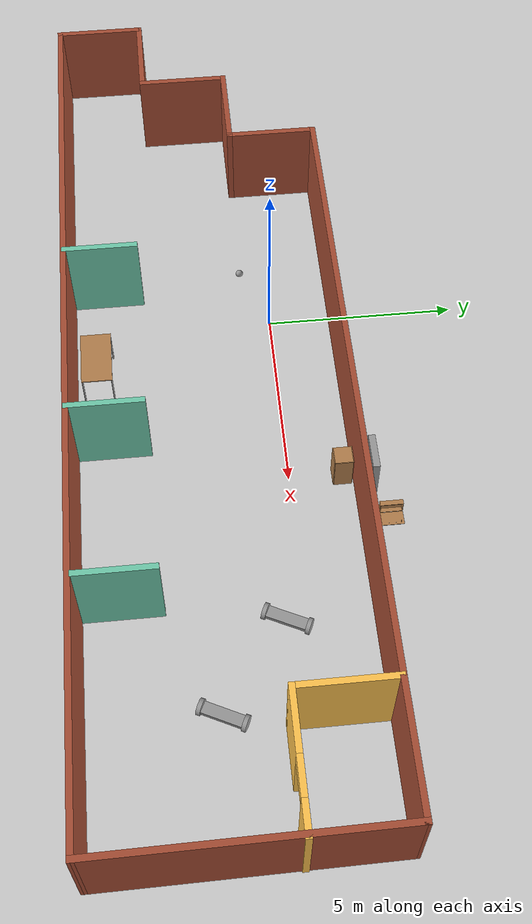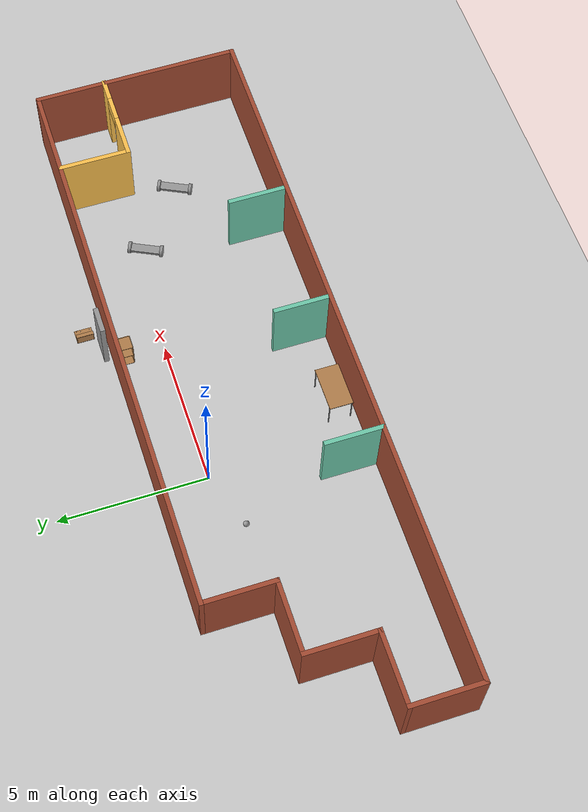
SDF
<sdf version="1.6">
 <world name="default">
  <plugin name="welcome" filename="libwelcome.so"/>
  <light name="sun" type="directional">
   <pose>0 0 10 0 -0 0</pose>
   <diffuse>0.8 0.8 0.8 1</diffuse>
   <specular>0.2 0.2 0.2 1</specular>
   <attenuation>
    <range>1000</range>
    <constant>0.9</constant>
    <linear>0.01</linear>
    <quadratic>0.001</quadratic>
   </attenuation>
   <direction>-0.5 0.1 -0.9</direction>
  </light>
  <model name="ground_plane">
   <static>1</static>
   <link name="link">
    <collision name="collision">
     <geometry><plane><normal>0 0 1</normal><size>100 100</size></plane></geometry>
     <surface>
      <contact><collide_bitmask>65535</collide_bitmask></contact>
      <friction><ode><mu>100</mu><mu2>50</mu2></ode></friction>
     </surface>
    </collision>
    <visual name="visual">
     <cast_shadows>0</cast_shadows>
     <geometry><plane><normal>0 0 1</normal><size>100 100</size></plane></geometry>
     <material>
      <script><uri>file://media/materials/scripts/gazebo.material</uri><name>Gazebo/Grey</name></script>
     </material>
    </visual>
   </link>
  </model>
  <gravity>0 0 -9.8</gravity>
  <magnetic_field>6e-06 2.3e-05 -4.2e-05</magnetic_field>
  <atmosphere type="adiabatic"/>
  <physics name="default_physics" default="0" type="ode">
   <max_step_size>0.001</max_step_size>
   <real_time_factor>1</real_time_factor>
   <real_time_update_rate>1000</real_time_update_rate>
  </physics>
  <scene><ambient>0.4 0.4 0.4 1</ambient><background>0.7 0.7 0.7 1</background><shadows>1</shadows></scene>
  <spherical_coordinates>
   <surface_model>EARTH_WGS84</surface_model>
   <latitude_deg>0</latitude_deg>
   <longitude_deg>0</longitude_deg>
   <elevation>0</elevation>
   <heading_deg>0</heading_deg>
  </spherical_coordinates>
  <model name="building1">
   <pose>2.49047 -1.82906 0 0 -0 0</pose>
   <link name="Door_0">
    <collision name="Door_0_Collision">
     <geometry><box><size>0.9 0.17 2</size></box></geometry>
     <pose>0 0 1 0 -0 0</pose>
    </collision>
    <visual name="Door_0_Visual">
     <pose>0 0 1 0 -0 0</pose>
     <geometry><box><size>0.9 0.17 2</size></box></geometry>
     <material>
      <script><uri>file://media/materials/scripts/gazebo.material</uri><name>Gazebo/Grey</name></script>
     </material>
    </visual>
    <pose>3.08272 3.79251 0 0 -0 0</pose>
   </link>
   <link name="Wall_0">
    <collision name="Wall_0_Collision">
     <geometry><box><size>19.5 0.15 2.5</size></box></geometry>
     <pose>0 0 1.25 0 -0 0</pose>
    </collision>
    <visual name="Wall_0_Visual">
     <pose>0 0 1.25 0 -0 0</pose>
     <geometry><box><size>19.5 0.15 2.5</size></box></geometry>
     <material>
      <script><uri>file://media/materials/scripts/gazebo.material</uri><name>Gazebo/Bricks</name></script>
      <ambient>1 1 1 1</ambient>
     </material>
     <meta><layer>0</layer></meta>
    </visual>
    <pose>2.32473 3.525 0 0 -0 0</pose>
   </link>
   <link name="Wall_10">
    <collision name="Wall_10_Collision">
     <geometry><box><size>24.25 0.15 2.5</size></box></geometry>
     <pose>0 0 1.25 0 -0 0</pose>
    </collision>
    <visual name="Wall_10_Visual">
     <pose>0 0 1.25 0 -0 0</pose>
     <geometry><box><size>24.25 0.15 2.5</size></box></geometry>
     <material>
      <script><uri>file://media/materials/scripts/gazebo.material</uri><name>Gazebo/Bricks</name></script>
      <ambient>1 1 1 1</ambient>
     </material>
     <meta><layer>0</layer></meta>
    </visual>
    <pose>-0.000265 -3.525 0 0 -0 0</pose>
   </link>
   <link name="Wall_11">
    <collision name="Wall_11_Collision">
     <geometry><box><size>7.20018 0.15 2.5</size></box></geometry>
     <pose>0 0 1.25 0 -0 0</pose>
    </collision>
    <visual name="Wall_11_Visual">
     <pose>0 0 1.25 0 -0 0</pose>
     <geometry><box><size>7.20018 0.15 2.5</size></box></geometry>
     <material>
      <script><uri>file://media/materials/scripts/gazebo.material</uri><name>Gazebo/Bricks</name></script>
      <ambient>1 1 1 1</ambient>
     </material>
     <meta><layer>0</layer></meta>
    </visual>
    <pose>12.0247 0 0 0 -0 1.57789</pose>
   </link>
   <link name="Wall_13">
    <collision name="Wall_13_Collision">
     <geometry><box><size>2.5 0.15 2.5</size></box></geometry>
     <pose>0 0 1.25 0 -0 0</pose>
    </collision>
    <visual name="Wall_13_Visual">
     <pose>0 0 1.25 0 -0 0</pose>
     <geometry><box><size>2.5 0.15 2.5</size></box></geometry>
     <material>
      <script><uri>file://media/materials/scripts/gazebo.material</uri><name>Gazebo/Grey</name></script>
      <ambient>1 0.764706 0.305882 1</ambient>
     </material>
     <meta><layer>0</layer></meta>
    </visual>
    <pose>8.9466 2.32405 0 0 -0 -1.5708</pose>
   </link>
   <link name="Wall_14">
    <pose>10.4966 1.14905 0 0 -0 0</pose>
    <visual name="Wall_14_Visual_0">
     <pose>-0.859299 0 1.25 0 -0 0</pose>
     <geometry><box><size>1.5314 0.15 2.5</size></box></geometry>
     <material>
      <script><uri>file://media/materials/scripts/gazebo.material</uri><name>Gazebo/Grey</name></script>
      <ambient>1 0.764706 0.305882 1</ambient>
     </material>
     <meta><layer>0</layer></meta>
    </visual>
    <collision name="Wall_14_Collision_0">
     <geometry><box><size>1.5314 0.15 2.5</size></box></geometry>
     <pose>-0.859299 0 1.25 0 -0 0</pose>
    </collision>
    <visual name="Wall_14_Visual_1">
     <pose>1.2157 0 1.25 0 -0 0</pose>
     <geometry><box><size>0.818598 0.15 2.5</size></box></geometry>
     <material>
      <script><uri>file://media/materials/scripts/gazebo.material</uri><name>Gazebo/Grey</name></script>
      <ambient>1 0.764706 0.305882 1</ambient>
     </material>
     <meta><layer>0</layer></meta>
    </visual>
    <collision name="Wall_14_Collision_1">
     <geometry><box><size>0.818598 0.15 2.5</size></box></geometry>
     <pose>1.2157 0 1.25 0 -0 0</pose>
    </collision>
    <visual name="Wall_14_Visual_2">
     <pose>0.356402 0 2.25 0 -0 0</pose>
     <geometry><box><size>0.9 0.15 0.5</size></box></geometry>
     <material>
      <script><uri>file://media/materials/scripts/gazebo.material</uri><name>Gazebo/Grey</name></script>
      <ambient>1 0.764706 0.305882 1</ambient>
     </material>
     <meta><layer>0</layer></meta>
    </visual>
    <collision name="Wall_14_Collision_2">
     <geometry><box><size>0.9 0.15 0.5</size></box></geometry>
     <pose>0.356402 0 2.25 0 -0 0</pose>
    </collision>
   </link>
   <link name="Wall_16">
    <collision name="Wall_16_Collision">
     <geometry><box><size>2 0.15 2.5</size></box></geometry>
     <pose>0 0 1.25 0 -0 0</pose>
    </collision>
    <visual name="Wall_16_Visual">
     <pose>0 0 1.25 0 -0 0</pose>
     <geometry><box><size>2 0.15 2.5</size></box></geometry>
     <material>
      <script><uri>file://media/materials/scripts/gazebo.material</uri><name>Gazebo/Grey</name></script>
      <ambient>0.435294 0.796078 0.67451 1</ambient>
     </material>
     <meta><layer>0</layer></meta>
    </visual>
    <pose>-3.555 -2.57166 0 0 -0 1.5708</pose>
   </link>
   <link name="Wall_18">
    <collision name="Wall_18_Collision">
     <geometry><box><size>2 0.15 2.5</size></box></geometry>
     <pose>0 0 1.25 0 -0 0</pose>
    </collision>
    <visual name="Wall_18_Visual">
     <pose>0 0 1.25 0 -0 0</pose>
     <geometry><box><size>2 0.15 2.5</size></box></geometry>
     <material>
      <script><uri>file://media/materials/scripts/gazebo.material</uri><name>Gazebo/Grey</name></script>
      <ambient>0.435294 0.796078 0.67451 1</ambient>
     </material>
     <meta><layer>0</layer></meta>
    </visual>
    <pose>1.40062 -2.58152 0 0 -0 1.5708</pose>
   </link>
   <link name="Wall_2">
    <collision name="Wall_2_Collision">
     <geometry><box><size>2.5 0.15 2.5</size></box></geometry>
     <pose>0 0 1.25 0 -0 0</pose>
    </collision>
    <visual name="Wall_2_Visual">
     <pose>0 0 1.25 0 -0 0</pose>
     <geometry><box><size>2.5 0.15 2.5</size></box></geometry>
     <material>
      <script><uri>file://media/materials/scripts/gazebo.material</uri><name>Gazebo/Bricks</name></script>
      <ambient>1 1 1 1</ambient>
     </material>
     <meta><layer>0</layer></meta>
    </visual>
    <pose>-7.35027 2.35 0 0 -0 -1.5708</pose>
   </link>
   <link name="Wall_21">
    <collision name="Wall_21_Collision">
     <geometry><box><size>2 0.15 2.5</size></box></geometry>
     <pose>0 0 1.25 0 -0 0</pose>
    </collision>
    <visual name="Wall_21_Visual">
     <pose>0 0 1.25 0 -0 0</pose>
     <geometry><box><size>2 0.15 2.5</size></box></geometry>
     <material>
      <script><uri>file://media/materials/scripts/gazebo.material</uri><name>Gazebo/Grey</name></script>
      <ambient>0.435294 0.796078 0.67451 1</ambient>
     </material>
     <meta><layer>0</layer></meta>
    </visual>
    <pose>5.89738 -2.47989 0 0 -0 1.5708</pose>
   </link>
   <link name="Wall_3">
    <collision name="Wall_3_Collision">
     <geometry><box><size>2.5 0.15 2.5</size></box></geometry>
     <pose>0 0 1.25 0 -0 0</pose>
    </collision>
    <visual name="Wall_3_Visual">
     <pose>0 0 1.25 0 -0 0</pose>
     <geometry><box><size>2.5 0.15 2.5</size></box></geometry>
     <material>
      <script><uri>file://media/materials/scripts/gazebo.material</uri><name>Gazebo/Bricks</name></script>
      <ambient>1 1 1 1</ambient>
     </material>
     <meta><layer>0</layer></meta>
    </visual>
    <pose>-8.52526 1.175 0 0 -0 3.14159</pose>
   </link>
   <link name="Wall_5">
    <collision name="Wall_5_Collision">
     <geometry><box><size>2.5 0.15 2.5</size></box></geometry>
     <pose>0 0 1.25 0 -0 0</pose>
    </collision>
    <visual name="Wall_5_Visual">
     <pose>0 0 1.25 0 -0 0</pose>
     <geometry><box><size>2.5 0.15 2.5</size></box></geometry>
     <material>
      <script><uri>file://media/materials/scripts/gazebo.material</uri><name>Gazebo/Bricks</name></script>
      <ambient>1 1 1 1</ambient>
     </material>
     <meta><layer>0</layer></meta>
    </visual>
    <pose>-9.70027 0 0 0 -0 -1.5708</pose>
   </link>
   <link name="Wall_7">
    <collision name="Wall_7_Collision">
     <geometry><box><size>2.5 0.15 2.5</size></box></geometry>
     <pose>0 0 1.25 0 -0 0</pose>
    </collision>
    <visual name="Wall_7_Visual">
     <pose>0 0 1.25 0 -0 0</pose>
     <geometry><box><size>2.5 0.15 2.5</size></box></geometry>
     <material>
      <script><uri>file://media/materials/scripts/gazebo.material</uri><name>Gazebo/Bricks</name></script>
      <ambient>1 1 1 1</ambient>
     </material>
     <meta><layer>0</layer></meta>
    </visual>
    <pose>-10.8753 -1.175 0 0 -0 3.14159</pose>
   </link>
   <link name="Wall_8">
    <collision name="Wall_8_Collision">
     <geometry><box><size>2.5 0.15 2.5</size></box></geometry>
     <pose>0 0 1.25 0 -0 0</pose>
    </collision>
    <visual name="Wall_8_Visual">
     <pose>0 0 1.25 0 -0 0</pose>
     <geometry><box><size>2.5 0.15 2.5</size></box></geometry>
     <material>
      <script><uri>file://media/materials/scripts/gazebo.material</uri><name>Gazebo/Bricks</name></script>
      <ambient>1 1 1 1</ambient>
     </material>
     <meta><layer>0</layer></meta>
    </visual>
    <pose>-12.0503 -2.35 0 0 -0 -1.5708</pose>
   </link>
   <static>1</static>
  </model>
  <model name="table">
   <static>1</static>
   <link name="link">
    <collision name="surface">
     <pose>0 0 1 0 -0 0</pose>
     <geometry><box><size>1.5 0.8 0.03</size></box></geometry>
     <surface><friction><ode><mu>0.6</mu><mu2>0.6</mu2></ode></friction></surface>
    </collision>
    <visual name="visual1">
     <pose>0 0 1 0 -0 0</pose>
     <geometry><box><size>1.5 0.8 0.03</size></box></geometry>
     <material>
      <script><uri>file://media/materials/scripts/gazebo.material</uri><name>Gazebo/Wood</name></script>
     </material>
    </visual>
    <collision name="front_left_leg">
     <pose>0.68 0.38 0.5 0 -0 0</pose>
     <geometry><cylinder><radius>0.02</radius><length>1</length></cylinder></geometry>
    </collision>
    <visual name="front_left_leg">
     <pose>0.68 0.38 0.5 0 -0 0</pose>
     <geometry><cylinder><radius>0.02</radius><length>1</length></cylinder></geometry>
     <material>
      <script><uri>file://media/materials/scripts/gazebo.material</uri><name>Gazebo/Grey</name></script>
     </material>
    </visual>
    <collision name="front_right_leg">
     <pose>0.68 -0.38 0.5 0 -0 0</pose>
     <geometry><cylinder><radius>0.02</radius><length>1</length></cylinder></geometry>
    </collision>
    <visual name="front_right_leg">
     <pose>0.68 -0.38 0.5 0 -0 0</pose>
     <geometry><cylinder><radius>0.02</radius><length>1</length></cylinder></geometry>
     <material>
      <script><uri>file://media/materials/scripts/gazebo.material</uri><name>Gazebo/Grey</name></script>
     </material>
    </visual>
    <collision name="back_right_leg">
     <pose>-0.68 -0.38 0.5 0 -0 0</pose>
     <geometry><cylinder><radius>0.02</radius><length>1</length></cylinder></geometry>
    </collision>
    <visual name="back_right_leg">
     <pose>-0.68 -0.38 0.5 0 -0 0</pose>
     <geometry><cylinder><radius>0.02</radius><length>1</length></cylinder></geometry>
     <material>
      <script><uri>file://media/materials/scripts/gazebo.material</uri><name>Gazebo/Grey</name></script>
     </material>
    </visual>
    <collision name="back_left_leg">
     <pose>-0.68 0.38 0.5 0 -0 0</pose>
     <geometry><cylinder><radius>0.02</radius><length>1</length></cylinder></geometry>
    </collision>
    <visual name="back_left_leg">
     <pose>-0.68 0.38 0.5 0 -0 0</pose>
     <geometry><cylinder><radius>0.02</radius><length>1</length></cylinder></geometry>
     <material>
      <script><uri>file://media/materials/scripts/gazebo.material</uri><name>Gazebo/Grey</name></script>
     </material>
    </visual>
   </link>
   <pose>1.44674 -4.69605 0 0 -0 0</pose>
  </model>
  <model name="cabinet">
   <static>1</static>
   <link name="cabinet_bottom_plate">
    <inertial>
     <pose>0 0 -1 0 -0 0</pose>
     <inertia><ixx>2.05</ixx><ixy>0</ixy><ixz>0</ixz><iyy>2.05</iyy><iyz>0</iyz><izz>2.05</izz></inertia>
     <mass>25</mass>
    </inertial>
    <collision name="cabinet_bottom_plate_geom">
     <pose>0 0 0.01 0 -0 0</pose>
     <geometry><box><size>0.45 0.45 0.02</size></box></geometry>
    </collision>
    <visual name="cabinet_bottom_plate_geom_visual">
     <pose>0 0 0.01 0 -0 0</pose>
     <geometry><box><size>0.45 0.45 0.02</size></box></geometry>
     <material>
      <script><uri>file://media/materials/scripts/gazebo.material</uri><name>Gazebo/Wood</name></script>
     </material>
    </visual>
    <collision name="cabinet_bottom_plate_geom_cabinet_back_plate">
     <pose>0.235 0 0.51 0 -0 0</pose>
     <geometry><box><size>0.02 0.45 1.02</size></box></geometry>
    </collision>
    <visual name="cabinet_bottom_plate_geom_cabinet_back_plate_visual">
     <pose>0.235 0 0.51 0 -0 0</pose>
     <geometry><box><size>0.02 0.45 1.02</size></box></geometry>
     <material>
      <script><uri>file://media/materials/scripts/gazebo.material</uri><name>Gazebo/Wood</name></script>
     </material>
    </visual>
    <collision name="cabinet_bottom_plate_geom_cabinet_left_plate">
     <pose>0 0.235 0.51 0 -0 0</pose>
     <geometry><box><size>0.45 0.02 1.02</size></box></geometry>
    </collision>
    <visual name="cabinet_bottom_plate_geom_cabinet_left_plate_visual">
     <pose>0 0.235 0.51 0 -0 0</pose>
     <geometry><box><size>0.45 0.02 1.02</size></box></geometry>
     <material>
      <script><uri>file://media/materials/scripts/gazebo.material</uri><name>Gazebo/Wood</name></script>
     </material>
    </visual>
    <collision name="cabinet_bottom_plate_geom_cabinet_middle_plate">
     <pose>0 0 0.51 0 -0 0</pose>
     <geometry><box><size>0.45 0.45 0.02</size></box></geometry>
    </collision>
    <visual name="cabinet_bottom_plate_geom_cabinet_middle_plate_visual">
     <pose>0 0 0.51 0 -0 0</pose>
     <geometry><box><size>0.45 0.45 0.02</size></box></geometry>
     <material>
      <script><uri>file://media/materials/scripts/gazebo.material</uri><name>Gazebo/Wood</name></script>
     </material>
    </visual>
    <collision name="cabinet_bottom_plate_geom_cabinet_right_plate">
     <pose>0 -0.235 0.51 0 -0 0</pose>
     <geometry><box><size>0.45 0.02 1.02</size></box></geometry>
    </collision>
    <visual name="cabinet_bottom_plate_geom_cabinet_right_plate_visual">
     <pose>0 -0.235 0.51 0 -0 0</pose>
     <geometry><box><size>0.45 0.02 1.02</size></box></geometry>
     <material>
      <script><uri>file://media/materials/scripts/gazebo.material</uri><name>Gazebo/Wood</name></script>
     </material>
    </visual>
    <collision name="cabinet_bottom_plate_geom_cabinet_top_plate">
     <pose>0 0 1.01 0 -0 0</pose>
     <geometry><box><size>0.45 0.45 0.02</size></box></geometry>
    </collision>
    <visual name="cabinet_bottom_plate_geom_cabinet_top_plate_visual">
     <pose>0 0 1.01 0 -0 0</pose>
     <geometry><box><size>0.45 0.45 0.02</size></box></geometry>
     <material>
      <script><uri>file://media/materials/scripts/gazebo.material</uri><name>Gazebo/Wood</name></script>
     </material>
    </visual>
   </link>
   <pose>5.02531 1.33672 0 0 -0 0</pose>
  </model>
  <model name="wooden_case_wooden_peg">
   <link name="wooden_case::base">
    <pose>0 0 0.024 0 -0 0</pose>
    <inertial>
     <pose>-0.022184 0 0.171592 0 -0 0</pose>
     <mass>3.96264</mass>
     <inertia>
      <ixx>0.213536</ixx>
      <ixy>0</ixy>
      <ixz>0.000779377</ixz>
      <iyy>0.0708943</iyy>
      <iyz>0</iyz>
      <izz>0.154604</izz>
     </inertia>
    </inertial>
    <collision name="collision_back">
     <pose>-0.053975 0 0.1778 0 -0 0</pose>
     <geometry><box><size>0.01905 0.5461 0.3175</size></box></geometry>
     <surface>
      <contact>
       <poissons_ratio>0.347</poissons_ratio>
       <elastic_modulus>8.8e+09</elastic_modulus>
       <ode><kp>100000</kp><kd>100</kd><max_vel>100</max_vel><min_depth>0.001</min_depth></ode>
      </contact>
      <friction>
       <torsional>
        <coefficient>1</coefficient>
        <use_patch_radius>0</use_patch_radius>
        <surface_radius>0.01</surface_radius>
       </torsional>
      </friction>
     </surface>
    </collision>
    <visual name="visual_back">
     <pose>-0.053975 0 0.1778 0 -0 0</pose>
     <geometry><box><size>0.01905 0.5461 0.3175</size></box></geometry>
     <material>
      <script><uri>file://media/materials/scripts/gazebo.material</uri><name>Gazebo/Wood</name></script>
     </material>
    </visual>
    <collision name="collision_bottom">
     <pose>0 0 0.009525 0 -0 0</pose>
     <geometry><box><size>0.127 0.5842 0.01905</size></box></geometry>
     <surface>
      <contact>
       <poissons_ratio>0.347</poissons_ratio>
       <elastic_modulus>8.8e+09</elastic_modulus>
       <ode><kp>100000</kp><kd>100</kd><max_vel>100</max_vel><min_depth>0.001</min_depth></ode>
      </contact>
      <friction>
       <torsional>
        <coefficient>1</coefficient>
        <use_patch_radius>0</use_patch_radius>
        <surface_radius>0.01</surface_radius>
       </torsional>
      </friction>
     </surface>
    </collision>
    <visual name="visual_bottom">
     <pose>0 0 0.009525 0 -0 0</pose>
     <geometry><box><size>0.127 0.5842 0.01905</size></box></geometry>
     <material>
      <script><uri>file://media/materials/scripts/gazebo.material</uri><name>Gazebo/Wood</name></script>
     </material>
    </visual>
    <collision name="collision_top">
     <pose>0 0 0.346075 0 -0 0</pose>
     <geometry><box><size>0.127 0.5842 0.01905</size></box></geometry>
     <surface>
      <contact>
       <poissons_ratio>0.347</poissons_ratio>
       <elastic_modulus>8.8e+09</elastic_modulus>
       <ode><kp>100000</kp><kd>100</kd><max_vel>100</max_vel><min_depth>0.001</min_depth></ode>
      </contact>
      <friction>
       <torsional>
        <coefficient>1</coefficient>
        <use_patch_radius>0</use_patch_radius>
        <surface_radius>0.01</surface_radius>
       </torsional>
      </friction>
     </surface>
    </collision>
    <visual name="visual_top">
     <pose>0 0 0.346075 0 -0 0</pose>
     <geometry><box><size>0.127 0.5842 0.01905</size></box></geometry>
     <material>
      <script><uri>file://media/materials/scripts/gazebo.material</uri><name>Gazebo/Wood</name></script>
     </material>
    </visual>
    <collision name="collision_left">
     <pose>0 -0.282575 0.1778 0 -0 0</pose>
     <geometry><box><size>0.127 0.01905 0.3175</size></box></geometry>
     <surface>
      <contact>
       <poissons_ratio>0.347</poissons_ratio>
       <elastic_modulus>8.8e+09</elastic_modulus>
       <ode><kp>100000</kp><kd>100</kd><max_vel>100</max_vel><min_depth>0.001</min_depth></ode>
      </contact>
      <friction>
       <torsional>
        <coefficient>1</coefficient>
        <use_patch_radius>0</use_patch_radius>
        <surface_radius>0.01</surface_radius>
       </torsional>
      </friction>
     </surface>
    </collision>
    <visual name="visual_left">
     <pose>0 -0.282575 0.1778 0 -0 0</pose>
     <geometry><box><size>0.127 0.01905 0.3175</size></box></geometry>
     <material>
      <script><uri>file://media/materials/scripts/gazebo.material</uri><name>Gazebo/Wood</name></script>
     </material>
    </visual>
    <collision name="collision_right">
     <pose>0 0.282575 0.1778 0 -0 0</pose>
     <geometry><box><size>0.127 0.01905 0.3175</size></box></geometry>
     <surface>
      <contact>
       <poissons_ratio>0.347</poissons_ratio>
       <elastic_modulus>8.8e+09</elastic_modulus>
       <ode><kp>100000</kp><kd>100</kd><max_vel>100</max_vel><min_depth>0.001</min_depth></ode>
      </contact>
      <friction>
       <torsional>
        <coefficient>1</coefficient>
        <use_patch_radius>0</use_patch_radius>
        <surface_radius>0.01</surface_radius>
       </torsional>
      </friction>
     </surface>
    </collision>
    <visual name="visual_right">
     <pose>0 0.282575 0.1778 0 -0 0</pose>
     <geometry><box><size>0.127 0.01905 0.3175</size></box></geometry>
     <material>
      <script><uri>file://media/materials/scripts/gazebo.material</uri><name>Gazebo/Wood</name></script>
     </material>
    </visual>
    <collision name="collision_block_left">
     <pose>0.0095 -0.2151 -0.012 0 -0 0</pose>
     <geometry><box><size>0.108 0.05 0.024</size></box></geometry>
     <surface>
      <contact>
       <poissons_ratio>0.347</poissons_ratio>
       <elastic_modulus>8.8e+09</elastic_modulus>
       <ode><kp>100000</kp><kd>100</kd><max_vel>100</max_vel><min_depth>0.001</min_depth></ode>
      </contact>
      <friction>
       <torsional>
        <coefficient>1</coefficient>
        <use_patch_radius>0</use_patch_radius>
        <surface_radius>0.01</surface_radius>
       </torsional>
      </friction>
     </surface>
    </collision>
    <visual name="visual_block_left">
     <pose>0.0095 -0.2151 -0.012 0 -0 0</pose>
     <geometry><box><size>0.108 0.05 0.024</size></box></geometry>
     <material>
      <script><uri>file://media/materials/scripts/gazebo.material</uri><name>Gazebo/Wood</name></script>
     </material>
    </visual>
    <collision name="collision_block_right">
     <pose>0.0095 0.2151 -0.012 0 -0 0</pose>
     <geometry><box><size>0.108 0.05 0.024</size></box></geometry>
     <surface>
      <contact>
       <poissons_ratio>0.347</poissons_ratio>
       <elastic_modulus>8.8e+09</elastic_modulus>
       <ode><kp>100000</kp><kd>100</kd><max_vel>100</max_vel><min_depth>0.001</min_depth></ode>
      </contact>
      <friction>
       <torsional>
        <coefficient>1</coefficient>
        <use_patch_radius>0</use_patch_radius>
        <surface_radius>0.01</surface_radius>
       </torsional>
      </friction>
     </surface>
    </collision>
    <visual name="visual_block_right">
     <pose>0.0095 0.2151 -0.012 0 -0 0</pose>
     <geometry><box><size>0.108 0.05 0.024</size></box></geometry>
     <material>
      <script><uri>file://media/materials/scripts/gazebo.material</uri><name>Gazebo/Wood</name></script>
     </material>
    </visual>
   </link>
   <link name="wooden_case::lid">
    <pose>0.243775 0 0.009525 0 -0 0</pose>
    <inertial>
     <mass>1.97874</mass>
     <inertia>
      <ixx>0.0563367</ixx>
      <ixy>0</ixy>
      <ixz>0</ixz>
      <iyy>0.020911</iyy>
      <iyz>0</iyz>
      <izz>0.0771281</izz>
     </inertia>
    </inertial>
    <collision name="collision">
     <geometry><box><size>0.3556 0.5842 0.01905</size></box></geometry>
     <surface>
      <contact>
       <poissons_ratio>0.347</poissons_ratio>
       <elastic_modulus>8.8e+09</elastic_modulus>
       <ode><kp>100000</kp><kd>100</kd><max_vel>100</max_vel><min_depth>0.001</min_depth></ode>
      </contact>
      <friction>
       <torsional>
        <coefficient>1</coefficient>
        <use_patch_radius>0</use_patch_radius>
        <surface_radius>0.01</surface_radius>
       </torsional>
      </friction>
     </surface>
    </collision>
    <visual name="visual">
     <geometry><box><size>0.3556 0.5842 0.01905</size></box></geometry>
     <material>
      <script><uri>file://media/materials/scripts/gazebo.material</uri><name>Gazebo/Wood</name></script>
     </material>
    </visual>
    <visual name="tee_nut_1">
     <pose>0.122 -0.216 0 0 -0 0</pose>
     <geometry><cylinder><radius>0.00635</radius><length>0.0192405</length></cylinder></geometry>
     <material>
      <script><uri>file://media/materials/scripts/gazebo.material</uri><name>Gazebo/Grey</name></script>
     </material>
    </visual>
    <visual name="tee_nut_2">
     <pose>0.122 -0.088 0 0 -0 0</pose>
     <geometry><cylinder><radius>0.00635</radius><length>0.0192405</length></cylinder></geometry>
     <material>
      <script><uri>file://media/materials/scripts/gazebo.material</uri><name>Gazebo/Grey</name></script>
     </material>
    </visual>
    <visual name="tee_nut_3">
     <pose>0.122 0.088 0 0 -0 0</pose>
     <geometry><cylinder><radius>0.00635</radius><length>0.0192405</length></cylinder></geometry>
     <material>
      <script><uri>file://media/materials/scripts/gazebo.material</uri><name>Gazebo/Grey</name></script>
     </material>
    </visual>
    <visual name="tee_nut_4">
     <pose>0.122 0.216 0 0 -0 0</pose>
     <geometry><cylinder><radius>0.00635</radius><length>0.0192405</length></cylinder></geometry>
     <material>
      <script><uri>file://media/materials/scripts/gazebo.material</uri><name>Gazebo/Grey</name></script>
     </material>
    </visual>
   </link>
   <joint name="wooden_case::lid_hinge" type="revolute">
    <pose>-0.1778 0 0.01905 0 -0 0</pose>
    <parent>wooden_case::base</parent>
    <child>wooden_case::lid</child>
    <axis>
     <xyz>0 1 0</xyz>
     <limit><upper>0.523599</upper><lower>-1.5708</lower></limit>
     <use_parent_model_frame>0</use_parent_model_frame>
     <dynamics><spring_reference>0</spring_reference><spring_stiffness>0</spring_stiffness></dynamics>
    </axis>
   </joint>
   <link name="peg::link">
    <pose>0.365774 0.216 0.05905 0 -0 0</pose>
    <inertial>
     <mass>0.0175</mass>
     <inertia>
      <ixx>9.74923e-06</ixx>
      <ixy>0</ixy>
      <ixz>0</ixz>
      <iyy>9.74923e-06</iyy>
      <iyz>0</iyz>
      <izz>8.31797e-07</izz>
     </inertia>
    </inertial>
    <collision name="collision">
     <geometry><cylinder><radius>0.00975</radius><length>0.08</length></cylinder></geometry>
     <surface>
      <contact>
       <poissons_ratio>0.347</poissons_ratio>
       <elastic_modulus>8.8e+09</elastic_modulus>
       <ode><kp>100000</kp><kd>100</kd><max_vel>100</max_vel><min_depth>0.001</min_depth></ode>
      </contact>
      <friction>
       <torsional>
        <coefficient>1</coefficient>
        <use_patch_radius>0</use_patch_radius>
        <surface_radius>0.01</surface_radius>
       </torsional>
      </friction>
     </surface>
    </collision>
    <visual name="visual">
     <geometry><cylinder><radius>0.00975</radius><length>0.08</length></cylinder></geometry>
     <material>
      <script><uri>file://media/materials/scripts/gazebo.material</uri><name>Gazebo/Wood</name></script>
     </material>
    </visual>
   </link>
   <joint name="case_peg" type="revolute">
    <child>peg::link</child>
    <parent>wooden_case::lid</parent>
    <axis>
     <xyz>0 0 1</xyz>
     <limit><upper>0</upper><lower>0</lower></limit>
     <use_parent_model_frame>0</use_parent_model_frame>
     <dynamics><spring_reference>0</spring_reference><spring_stiffness>0</spring_stiffness></dynamics>
    </axis>
   </joint>
   <pose>6.12993 2.43461 0 0 -0 0</pose>
  </model>
  <model name="robot_w_cylinder">
   <link name="link_0">
    <inertial>
     <mass>1</mass>
     <inertia>
      <ixx>0.166667</ixx>
      <ixy>0</ixy>
      <ixz>0</ixz>
      <iyy>0.166667</iyy>
      <iyz>0</iyz>
      <izz>0.166667</izz>
     </inertia>
    </inertial>
    <visual name="visual">
     <geometry><box><size>0.3 1 0.1</size></box></geometry>
     <material>
      <lighting>1</lighting>
      <script><uri>file://media/materials/scripts/gazebo.material</uri><name>Gazebo/Grey</name></script>
      <shader type="pixel"><normal_map>__default__</normal_map></shader>
      <ambient>0.3 0.3 0.3 1</ambient>
      <diffuse>0.7 0.7 0.7 1</diffuse>
      <specular>0.01 0.01 0.01 1</specular>
      <emissive>0 0 0 1</emissive>
     </material>
    </visual>
    <collision name="collision">
     <geometry><box><size>0.3 1 0.1</size></box></geometry>
     <surface>
      <friction>
       <ode><mu>1</mu><mu2>1</mu2><fdir1>0 0 0</fdir1><slip1>0</slip1><slip2>0</slip2></ode>
       <torsional>
        <coefficient>1</coefficient>
        <patch_radius>0</patch_radius>
        <surface_radius>0</surface_radius>
        <use_patch_radius>1</use_patch_radius>
        <ode><slip>0</slip></ode>
       </torsional>
      </friction>
      <bounce><restitution_coefficient>0</restitution_coefficient><threshold>1e+06</threshold></bounce>
      <contact>
       <collide_without_contact>0</collide_without_contact>
       <collide_without_contact_bitmask>1</collide_without_contact_bitmask>
       <collide_bitmask>1</collide_bitmask>
       <ode>
        <soft_cfm>0</soft_cfm>
        <soft_erp>0.2</soft_erp>
        <kp>1e+13</kp>
        <kd>1</kd>
        <max_vel>0.01</max_vel>
        <min_depth>0</min_depth>
       </ode>
       <bullet>
        <split_impulse>1</split_impulse>
        <split_impulse_penetration_threshold>-0.01</split_impulse_penetration_threshold>
        <soft_cfm>0</soft_cfm>
        <soft_erp>0.2</soft_erp>
        <kp>1e+13</kp>
        <kd>1</kd>
       </bullet>
      </contact>
     </surface>
    </collision>
   </link>
   <link name="link_0_0">
    <inertial>
     <mass>0.00314159</mass>
     <inertia>
      <ixx>1.047e-05</ixx>
      <ixy>0</ixy>
      <ixz>0</ixz>
      <iyy>1.047e-05</iyy>
      <iyz>0</iyz>
      <izz>1.571e-05</izz>
     </inertia>
    </inertial>
    <pose>0.002623 0.008898 -0.073045 -1e-05 0.020302 -0.000321</pose>
    <visual name="visual">
     <geometry><cylinder><radius>0.1</radius><length>0.05</length></cylinder></geometry>
     <material>
      <lighting>1</lighting>
      <script><uri>file://media/materials/scripts/gazebo.material</uri><name>Gazebo/Grey</name></script>
      <shader type="pixel"><normal_map>__default__</normal_map></shader>
      <ambient>0.5 0.2 0.3 1</ambient>
      <diffuse>0.7 0.7 0.7 1</diffuse>
      <specular>0.01 0.01 0.01 1</specular>
      <emissive>0 0 0 1</emissive>
     </material>
    </visual>
    <collision name="collision">
     <geometry><cylinder><radius>0.1</radius><length>0.05</length></cylinder></geometry>
     <surface>
      <friction>
       <ode><mu>1</mu><mu2>1</mu2><fdir1>0 0 0</fdir1><slip1>0</slip1><slip2>0</slip2></ode>
       <torsional>
        <coefficient>1</coefficient>
        <patch_radius>0</patch_radius>
        <surface_radius>0</surface_radius>
        <use_patch_radius>1</use_patch_radius>
        <ode><slip>0</slip></ode>
       </torsional>
      </friction>
      <bounce><restitution_coefficient>0</restitution_coefficient><threshold>1e+06</threshold></bounce>
      <contact>
       <collide_without_contact>0</collide_without_contact>
       <collide_without_contact_bitmask>1</collide_without_contact_bitmask>
       <collide_bitmask>1</collide_bitmask>
       <ode>
        <soft_cfm>0</soft_cfm>
        <soft_erp>0.2</soft_erp>
        <kp>1e+13</kp>
        <kd>1</kd>
        <max_vel>0.01</max_vel>
        <min_depth>0</min_depth>
       </ode>
       <bullet>
        <split_impulse>1</split_impulse>
        <split_impulse_penetration_threshold>-0.01</split_impulse_penetration_threshold>
        <soft_cfm>0</soft_cfm>
        <soft_erp>0.2</soft_erp>
        <kp>1e+13</kp>
        <kd>1</kd>
       </bullet>
      </contact>
     </surface>
    </collision>
   </link>
   <link name="link_2">
    <inertial>
     <mass>1</mass>
     <inertia><ixx>0.145833</ixx><ixy>0</ixy><ixz>0</ixz><iyy>0.145833</iyy><iyz>0</iyz><izz>0.125</izz></inertia>
    </inertial>
    <pose>-0 -0.550019 -0 1.5707 -0 0</pose>
    <visual name="visual">
     <geometry><cylinder><radius>0.2</radius><length>0.1</length></cylinder></geometry>
     <material>
      <lighting>1</lighting>
      <script><uri>file://media/materials/scripts/gazebo.material</uri><name>Gazebo/Grey</name></script>
      <shader type="pixel"><normal_map>__default__</normal_map></shader>
      <ambient>0.3 0.3 0.3 1</ambient>
      <diffuse>0.7 0.7 0.7 1</diffuse>
      <specular>0.01 0.01 0.01 1</specular>
      <emissive>0 0 0 1</emissive>
     </material>
    </visual>
    <collision name="collision">
     <geometry><cylinder><radius>0.2</radius><length>0.1</length></cylinder></geometry>
     <surface>
      <friction>
       <ode><mu>1</mu><mu2>1</mu2><fdir1>0 0 0</fdir1><slip1>0</slip1><slip2>0</slip2></ode>
       <torsional>
        <coefficient>1</coefficient>
        <patch_radius>0</patch_radius>
        <surface_radius>0</surface_radius>
        <use_patch_radius>1</use_patch_radius>
        <ode><slip>0</slip></ode>
       </torsional>
      </friction>
      <bounce><restitution_coefficient>0</restitution_coefficient><threshold>1e+06</threshold></bounce>
      <contact>
       <collide_without_contact>0</collide_without_contact>
       <collide_without_contact_bitmask>1</collide_without_contact_bitmask>
       <collide_bitmask>1</collide_bitmask>
       <ode>
        <soft_cfm>0</soft_cfm>
        <soft_erp>0.2</soft_erp>
        <kp>1e+13</kp>
        <kd>1</kd>
        <max_vel>0.01</max_vel>
        <min_depth>0</min_depth>
       </ode>
       <bullet>
        <split_impulse>1</split_impulse>
        <split_impulse_penetration_threshold>-0.01</split_impulse_penetration_threshold>
        <soft_cfm>0</soft_cfm>
        <soft_erp>0.2</soft_erp>
        <kp>1e+13</kp>
        <kd>1</kd>
       </bullet>
      </contact>
     </surface>
    </collision>
   </link>
   <link name="link_2_clone">
    <inertial>
     <mass>1</mass>
     <inertia><ixx>0.145833</ixx><ixy>0</ixy><ixz>0</ixz><iyy>0.145833</iyy><iyz>0</iyz><izz>0.125</izz></inertia>
    </inertial>
    <pose>0 0.550019 0 1.5707 -0 0</pose>
    <visual name="visual">
     <geometry><cylinder><radius>0.2</radius><length>0.1</length></cylinder></geometry>
     <material>
      <lighting>1</lighting>
      <script><uri>file://media/materials/scripts/gazebo.material</uri><name>Gazebo/Grey</name></script>
      <shader type="pixel"><normal_map>__default__</normal_map></shader>
      <ambient>0.3 0.3 0.3 1</ambient>
      <diffuse>0.7 0.7 0.7 1</diffuse>
      <specular>0.01 0.01 0.01 1</specular>
      <emissive>0 0 0 1</emissive>
     </material>
    </visual>
    <collision name="collision">
     <geometry><cylinder><radius>0.2</radius><length>0.1</length></cylinder></geometry>
     <surface>
      <friction>
       <ode><mu>1</mu><mu2>1</mu2><fdir1>0 0 0</fdir1><slip1>0</slip1><slip2>0</slip2></ode>
       <torsional>
        <coefficient>1</coefficient>
        <patch_radius>0</patch_radius>
        <surface_radius>0</surface_radius>
        <use_patch_radius>1</use_patch_radius>
        <ode><slip>0</slip></ode>
       </torsional>
      </friction>
      <bounce><restitution_coefficient>0</restitution_coefficient><threshold>1e+06</threshold></bounce>
      <contact>
       <collide_without_contact>0</collide_without_contact>
       <collide_without_contact_bitmask>1</collide_without_contact_bitmask>
       <collide_bitmask>1</collide_bitmask>
       <ode>
        <soft_cfm>0</soft_cfm>
        <soft_erp>0.2</soft_erp>
        <kp>1e+13</kp>
        <kd>1</kd>
        <max_vel>0.01</max_vel>
        <min_depth>0</min_depth>
       </ode>
       <bullet>
        <split_impulse>1</split_impulse>
        <split_impulse_penetration_threshold>-0.01</split_impulse_penetration_threshold>
        <soft_cfm>0</soft_cfm>
        <soft_erp>0.2</soft_erp>
        <kp>1e+13</kp>
        <kd>1</kd>
       </bullet>
      </contact>
     </surface>
    </collision>
   </link>
   <joint name="link_0_JOINT_0_0" type="fixed">
    <parent>link_0</parent>
    <child>link_0_0</child>
    <physics>
     <ode><limit><cfm>0</cfm><erp>0.2</erp></limit><suspension><cfm>0</cfm><erp>0.2</erp></suspension></ode>
    </physics>
   </joint>
   <joint name="link_0_JOINT_0" type="revolute">
    <parent>link_0</parent>
    <child>link_2</child>
    <axis>
     <xyz>0 0 1</xyz>
     <use_parent_model_frame>0</use_parent_model_frame>
     <limit>
      <lower>-1.79769e+308</lower>
      <upper>1.79769e+308</upper>
      <effort>-1</effort>
      <velocity>-1</velocity>
     </limit>
     <dynamics>
      <spring_reference>0</spring_reference>
      <spring_stiffness>0</spring_stiffness>
      <damping>0</damping>
      <friction>0</friction>
     </dynamics>
    </axis>
    <physics>
     <ode><limit><cfm>0</cfm><erp>0.2</erp></limit><suspension><cfm>0</cfm><erp>0.2</erp></suspension></ode>
    </physics>
   </joint>
   <joint name="link_0_JOINT_1" type="revolute">
    <parent>link_0</parent>
    <child>link_2_clone</child>
    <axis>
     <xyz>0 0 1</xyz>
     <use_parent_model_frame>0</use_parent_model_frame>
     <limit>
      <lower>-1.79769e+308</lower>
      <upper>1.79769e+308</upper>
      <effort>-1</effort>
      <velocity>-1</velocity>
     </limit>
     <dynamics>
      <spring_reference>0</spring_reference>
      <spring_stiffness>0</spring_stiffness>
      <damping>0</damping>
      <friction>0</friction>
     </dynamics>
    </axis>
    <physics>
     <ode><limit><cfm>0</cfm><erp>0.2</erp></limit><suspension><cfm>0</cfm><erp>0.2</erp></suspension></ode>
    </physics>
   </joint>
   <static>0</static>
   <pose>11.0851 -2.1489 0.200005 -0 0.048012 2.69044</pose>
  </model>
  <model name="robot_w_cylinder_clone">
   <link name="link_0">
    <inertial>
     <mass>1</mass>
     <inertia>
      <ixx>0.166667</ixx>
      <ixy>0</ixy>
      <ixz>0</ixz>
      <iyy>0.166667</iyy>
      <iyz>0</iyz>
      <izz>0.166667</izz>
     </inertia>
    </inertial>
    <visual name="visual">
     <geometry><box><size>0.3 1 0.1</size></box></geometry>
     <material>
      <lighting>1</lighting>
      <script><uri>file://media/materials/scripts/gazebo.material</uri><name>Gazebo/Grey</name></script>
      <shader type="pixel"><normal_map>__default__</normal_map></shader>
      <ambient>0.3 0.3 0.3 1</ambient>
      <diffuse>0.7 0.7 0.7 1</diffuse>
      <specular>0.01 0.01 0.01 1</specular>
      <emissive>0 0 0 1</emissive>
     </material>
    </visual>
    <collision name="collision">
     <geometry><box><size>0.3 1 0.1</size></box></geometry>
     <surface>
      <friction>
       <ode><mu>1</mu><mu2>1</mu2><fdir1>0 0 0</fdir1><slip1>0</slip1><slip2>0</slip2></ode>
       <torsional>
        <coefficient>1</coefficient>
        <patch_radius>0</patch_radius>
        <surface_radius>0</surface_radius>
        <use_patch_radius>1</use_patch_radius>
        <ode><slip>0</slip></ode>
       </torsional>
      </friction>
      <bounce><restitution_coefficient>0</restitution_coefficient><threshold>1e+06</threshold></bounce>
      <contact>
       <collide_without_contact>0</collide_without_contact>
       <collide_without_contact_bitmask>1</collide_without_contact_bitmask>
       <collide_bitmask>1</collide_bitmask>
       <ode>
        <soft_cfm>0</soft_cfm>
        <soft_erp>0.2</soft_erp>
        <kp>1e+13</kp>
        <kd>1</kd>
        <max_vel>0.01</max_vel>
        <min_depth>0</min_depth>
       </ode>
       <bullet>
        <split_impulse>1</split_impulse>
        <split_impulse_penetration_threshold>-0.01</split_impulse_penetration_threshold>
        <soft_cfm>0</soft_cfm>
        <soft_erp>0.2</soft_erp>
        <kp>1e+13</kp>
        <kd>1</kd>
       </bullet>
      </contact>
     </surface>
    </collision>
   </link>
   <link name="link_0_0">
    <inertial>
     <mass>0.00314159</mass>
     <inertia>
      <ixx>1.047e-05</ixx>
      <ixy>0</ixy>
      <ixz>0</ixz>
      <iyy>1.047e-05</iyy>
      <iyz>0</iyz>
      <izz>1.571e-05</izz>
     </inertia>
    </inertial>
    <pose>0.002623 0.008898 -0.073045 -1e-05 0.020302 -0.000321</pose>
    <visual name="visual">
     <geometry><cylinder><radius>0.1</radius><length>0.05</length></cylinder></geometry>
     <material>
      <lighting>1</lighting>
      <script><uri>file://media/materials/scripts/gazebo.material</uri><name>Gazebo/Grey</name></script>
      <shader type="pixel"><normal_map>__default__</normal_map></shader>
      <ambient>0.5 0.2 0.3 1</ambient>
      <diffuse>0.7 0.7 0.7 1</diffuse>
      <specular>0.01 0.01 0.01 1</specular>
      <emissive>0 0 0 1</emissive>
     </material>
    </visual>
    <collision name="collision">
     <geometry><cylinder><radius>0.1</radius><length>0.05</length></cylinder></geometry>
     <surface>
      <friction>
       <ode><mu>1</mu><mu2>1</mu2><fdir1>0 0 0</fdir1><slip1>0</slip1><slip2>0</slip2></ode>
       <torsional>
        <coefficient>1</coefficient>
        <patch_radius>0</patch_radius>
        <surface_radius>0</surface_radius>
        <use_patch_radius>1</use_patch_radius>
        <ode><slip>0</slip></ode>
       </torsional>
      </friction>
      <bounce><restitution_coefficient>0</restitution_coefficient><threshold>1e+06</threshold></bounce>
      <contact>
       <collide_without_contact>0</collide_without_contact>
       <collide_without_contact_bitmask>1</collide_without_contact_bitmask>
       <collide_bitmask>1</collide_bitmask>
       <ode>
        <soft_cfm>0</soft_cfm>
        <soft_erp>0.2</soft_erp>
        <kp>1e+13</kp>
        <kd>1</kd>
        <max_vel>0.01</max_vel>
        <min_depth>0</min_depth>
       </ode>
       <bullet>
        <split_impulse>1</split_impulse>
        <split_impulse_penetration_threshold>-0.01</split_impulse_penetration_threshold>
        <soft_cfm>0</soft_cfm>
        <soft_erp>0.2</soft_erp>
        <kp>1e+13</kp>
        <kd>1</kd>
       </bullet>
      </contact>
     </surface>
    </collision>
   </link>
   <link name="link_2">
    <inertial>
     <mass>1</mass>
     <inertia><ixx>0.145833</ixx><ixy>0</ixy><ixz>0</ixz><iyy>0.145833</iyy><iyz>0</iyz><izz>0.125</izz></inertia>
    </inertial>
    <pose>-0 -0.550019 -0 1.5707 -0 0</pose>
    <visual name="visual">
     <geometry><cylinder><radius>0.2</radius><length>0.1</length></cylinder></geometry>
     <material>
      <lighting>1</lighting>
      <script><uri>file://media/materials/scripts/gazebo.material</uri><name>Gazebo/Grey</name></script>
      <shader type="pixel"><normal_map>__default__</normal_map></shader>
      <ambient>0.3 0.3 0.3 1</ambient>
      <diffuse>0.7 0.7 0.7 1</diffuse>
      <specular>0.01 0.01 0.01 1</specular>
      <emissive>0 0 0 1</emissive>
     </material>
    </visual>
    <collision name="collision">
     <geometry><cylinder><radius>0.2</radius><length>0.1</length></cylinder></geometry>
     <surface>
      <friction>
       <ode><mu>1</mu><mu2>1</mu2><fdir1>0 0 0</fdir1><slip1>0</slip1><slip2>0</slip2></ode>
       <torsional>
        <coefficient>1</coefficient>
        <patch_radius>0</patch_radius>
        <surface_radius>0</surface_radius>
        <use_patch_radius>1</use_patch_radius>
        <ode><slip>0</slip></ode>
       </torsional>
      </friction>
      <bounce><restitution_coefficient>0</restitution_coefficient><threshold>1e+06</threshold></bounce>
      <contact>
       <collide_without_contact>0</collide_without_contact>
       <collide_without_contact_bitmask>1</collide_without_contact_bitmask>
       <collide_bitmask>1</collide_bitmask>
       <ode>
        <soft_cfm>0</soft_cfm>
        <soft_erp>0.2</soft_erp>
        <kp>1e+13</kp>
        <kd>1</kd>
        <max_vel>0.01</max_vel>
        <min_depth>0</min_depth>
       </ode>
       <bullet>
        <split_impulse>1</split_impulse>
        <split_impulse_penetration_threshold>-0.01</split_impulse_penetration_threshold>
        <soft_cfm>0</soft_cfm>
        <soft_erp>0.2</soft_erp>
        <kp>1e+13</kp>
        <kd>1</kd>
       </bullet>
      </contact>
     </surface>
    </collision>
   </link>
   <link name="link_2_clone">
    <inertial>
     <mass>1</mass>
     <inertia><ixx>0.145833</ixx><ixy>0</ixy><ixz>0</ixz><iyy>0.145833</iyy><iyz>0</iyz><izz>0.125</izz></inertia>
    </inertial>
    <pose>0 0.550019 0 1.5707 -0 0</pose>
    <visual name="visual">
     <geometry><cylinder><radius>0.2</radius><length>0.1</length></cylinder></geometry>
     <material>
      <lighting>1</lighting>
      <script><uri>file://media/materials/scripts/gazebo.material</uri><name>Gazebo/Grey</name></script>
      <shader type="pixel"><normal_map>__default__</normal_map></shader>
      <ambient>0.3 0.3 0.3 1</ambient>
      <diffuse>0.7 0.7 0.7 1</diffuse>
      <specular>0.01 0.01 0.01 1</specular>
      <emissive>0 0 0 1</emissive>
     </material>
    </visual>
    <collision name="collision">
     <geometry><cylinder><radius>0.2</radius><length>0.1</length></cylinder></geometry>
     <surface>
      <friction>
       <ode><mu>1</mu><mu2>1</mu2><fdir1>0 0 0</fdir1><slip1>0</slip1><slip2>0</slip2></ode>
       <torsional>
        <coefficient>1</coefficient>
        <patch_radius>0</patch_radius>
        <surface_radius>0</surface_radius>
        <use_patch_radius>1</use_patch_radius>
        <ode><slip>0</slip></ode>
       </torsional>
      </friction>
      <bounce><restitution_coefficient>0</restitution_coefficient><threshold>1e+06</threshold></bounce>
      <contact>
       <collide_without_contact>0</collide_without_contact>
       <collide_without_contact_bitmask>1</collide_without_contact_bitmask>
       <collide_bitmask>1</collide_bitmask>
       <ode>
        <soft_cfm>0</soft_cfm>
        <soft_erp>0.2</soft_erp>
        <kp>1e+13</kp>
        <kd>1</kd>
        <max_vel>0.01</max_vel>
        <min_depth>0</min_depth>
       </ode>
       <bullet>
        <split_impulse>1</split_impulse>
        <split_impulse_penetration_threshold>-0.01</split_impulse_penetration_threshold>
        <soft_cfm>0</soft_cfm>
        <soft_erp>0.2</soft_erp>
        <kp>1e+13</kp>
        <kd>1</kd>
       </bullet>
      </contact>
     </surface>
    </collision>
   </link>
   <joint name="link_0_JOINT_0_0" type="fixed">
    <parent>link_0</parent>
    <child>link_0_0</child>
    <physics>
     <ode><limit><cfm>0</cfm><erp>0.2</erp></limit><suspension><cfm>0</cfm><erp>0.2</erp></suspension></ode>
    </physics>
   </joint>
   <joint name="link_0_JOINT_0" type="revolute">
    <parent>link_0</parent>
    <child>link_2</child>
    <axis>
     <xyz>0 0 1</xyz>
     <use_parent_model_frame>0</use_parent_model_frame>
     <limit>
      <lower>-1.79769e+308</lower>
      <upper>1.79769e+308</upper>
      <effort>-1</effort>
      <velocity>-1</velocity>
     </limit>
     <dynamics>
      <spring_reference>0</spring_reference>
      <spring_stiffness>0</spring_stiffness>
      <damping>0</damping>
      <friction>0</friction>
     </dynamics>
    </axis>
    <physics>
     <ode><limit><cfm>0</cfm><erp>0.2</erp></limit><suspension><cfm>0</cfm><erp>0.2</erp></suspension></ode>
    </physics>
   </joint>
   <joint name="link_0_JOINT_1" type="revolute">
    <parent>link_0</parent>
    <child>link_2_clone</child>
    <axis>
     <xyz>0 0 1</xyz>
     <use_parent_model_frame>0</use_parent_model_frame>
     <limit>
      <lower>-1.79769e+308</lower>
      <upper>1.79769e+308</upper>
      <effort>-1</effort>
      <velocity>-1</velocity>
     </limit>
     <dynamics>
      <spring_reference>0</spring_reference>
      <spring_stiffness>0</spring_stiffness>
      <damping>0</damping>
      <friction>0</friction>
     </dynamics>
    </axis>
    <physics>
     <ode><limit><cfm>0</cfm><erp>0.2</erp></limit><suspension><cfm>0</cfm><erp>0.2</erp></suspension></ode>
    </physics>
   </joint>
   <static>0</static>
   <pose>8.88942 -0.461621 0.200005 -0 0.048012 2.69044</pose>
  </model>
  <audio><device>default</device></audio>
  <model name="my_ball">
   <link name="link_0">
    <inertial>
     <mass>1</mass>
     <inertia><ixx>0.1</ixx><ixy>0</ixy><ixz>0</ixz><iyy>0.1</iyy><iyz>0</iyz><izz>0.1</izz></inertia>
    </inertial>
    <visual name="visual">
     <geometry><sphere><radius>0.1</radius></sphere></geometry>
     <material>
      <lighting>1</lighting>
      <script><uri>file://media/materials/scripts/gazebo.material</uri><name>Gazebo/Grey</name></script>
      <shader type="vertex"><normal_map>__default__</normal_map></shader>
      <ambient>1 1 1 1</ambient>
      <diffuse>1 1 1 1</diffuse>
      <specular>1 1 1 1</specular>
      <emissive>1 1 1 1</emissive>
     </material>
    </visual>
    <collision name="collision">
     <geometry><sphere><radius>0.1</radius></sphere></geometry>
     <surface>
      <friction>
       <ode><mu>1</mu><mu2>1</mu2><fdir1>0 0 0</fdir1><slip1>0</slip1><slip2>0</slip2></ode>
       <torsional>
        <coefficient>1</coefficient>
        <patch_radius>0</patch_radius>
        <surface_radius>0</surface_radius>
        <use_patch_radius>1</use_patch_radius>
        <ode><slip>0</slip></ode>
       </torsional>
      </friction>
      <bounce><restitution_coefficient>0</restitution_coefficient><threshold>1e+06</threshold></bounce>
      <contact>
       <collide_without_contact>0</collide_without_contact>
       <collide_without_contact_bitmask>1</collide_without_contact_bitmask>
       <collide_bitmask>1</collide_bitmask>
       <ode>
        <soft_cfm>0</soft_cfm>
        <soft_erp>0.2</soft_erp>
        <kp>1e+13</kp>
        <kd>1</kd>
        <max_vel>0.01</max_vel>
        <min_depth>0</min_depth>
       </ode>
       <bullet>
        <split_impulse>1</split_impulse>
        <split_impulse_penetration_threshold>-0.01</split_impulse_penetration_threshold>
        <soft_cfm>0</soft_cfm>
        <soft_erp>0.2</soft_erp>
        <kp>1e+13</kp>
        <kd>1</kd>
       </bullet>
      </contact>
     </surface>
    </collision>
   </link>
   <static>0</static>
   <pose>-1.85944 -0.670823 0 0 -0 0</pose>
  </model>
  <plugin filename="libcollision_map_creator.so" name="collision_map_creator"/>
 </world>
</sdf>
